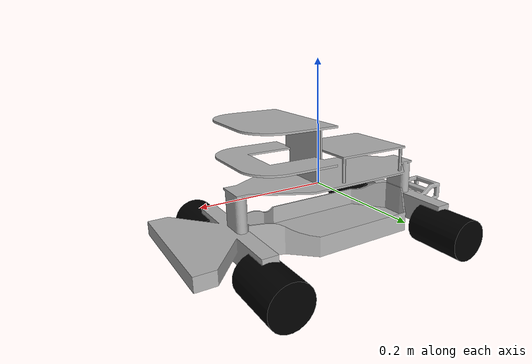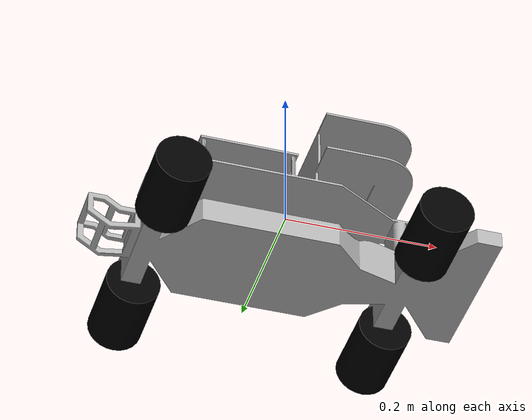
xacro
<?xml version="1.0"?>
<robot name="roscontrol"
  xmlns:xacro="http://ros.org/wiki/xacro">

  <xacro:property name="width" value="0.2" />
  <xacro:property name="leglen" value="0.6" />
  <xacro:property name="polelen" value="0.2" />
  <xacro:property name="bodylen" value="0.6" />
  <xacro:property name="baselen" value="0.4" />
  <xacro:property name="wheeldiam" value="0.07" />
  <xacro:property name="pi" value="3.1415" />
  <xacro:property name="chassisL" value="0.51" />
  <xacro:property name="chassisW" value="0.2" />
  <xacro:property name="chassisH" value="0.15" />
  <xacro:property name="seperationWheelDist" value=".1215" />
  <xacro:property name="frontWheelDist" value="0.1535" />
  <xacro:property name="backWheelDist" value="-0.1763" />

  <xacro:property name="chassisScale" value="0.001"/>

  <xacro:property name="chassisMeshXoffset" value="-0.125"/>
  <xacro:property name="chassisMeshYoffset" value="-0.070"/>
  <xacro:property name="chassisMeshZoffset" value="-0.085"/>

  <material name="blue">
    <color rgba="0 0 0.8 1"/>
  </material>

  <material name="black">
    <color rgba="0 0 0 1"/>
  </material>

  <material name="white">
    <color rgba="1 1 1 1"/>
  </material>

  <xacro:macro name="default_inertial" params="mass">
    <inertial>
      <mass value="${mass}" />
      <inertia ixx="1.0" ixy="0.0" ixz="0.0" iyy="1.0" iyz="0.0" izz="1.0" />
    </inertial>
  </xacro:macro>

  <link name="base_link">
    <visual>
      <geometry>
        <mesh filename="file:///$(find avc_urdf)/meshes/chassis2.DAE" scale="${chassisScale} ${chassisScale} ${chassisScale}"/>
      </geometry>
      <origin rpy="1.57 0 0" xyz="${chassisMeshXoffset} ${chassisMeshYoffset} ${chassisMeshZoffset}" />
    </visual>
    <collision>
      <geometry>
        <box size = "${chassisL} ${chassisW} ${chassisH} "/>
      </geometry>
    </collision>
    <xacro:default_inertial mass="10"/>
  </link>

  <xacro:macro name="wheel" params="prefix suffix fb lr">

    <link name="${prefix}_${suffix}_wheel">
      <visual>
        <origin xyz="0 0 0" rpy="${pi/2} 0 0" />
        <geometry>
          <cylinder radius="${wheeldiam/2}" length="0.1"/>
        </geometry>
        <material name="black"/>
      </visual>
      <collision>
        <origin xyz="0 0 0" rpy="${pi/2} 0 0" />
        <geometry>
          <cylinder radius="${wheeldiam/2}" length="0.1"/>
        </geometry>
      </collision>
      <xacro:default_inertial mass="1"/>
    </link>
    <joint name="${prefix}_${suffix}_wheel_joint" type="continuous">
      <axis xyz="0 1 0" rpy="0 0 0" />
      <parent link="base_link"/>
      <child link="${prefix}_${suffix}_wheel"/>
      <origin xyz="${fb} ${lr} -${wheeldiam/2+.05}" rpy="0 0 0"/>
    </joint>

    <!-- This block provides the simulator (Gazebo) with information on a few additional
    physical properties. See http://gazebosim.org/tutorials/?tut=ros_urdf for more-->
    <gazebo reference="${prefix}_${suffix}_wheel">
      <mu1 value="200.0"/>
      <mu2 value="100.0"/>
      <kp value="10000000.0" />
      <kd value="1.0" />
      <material>Gazebo/Grey</material>
    </gazebo>

    <!-- This block connects the wheel joint to an actuator (motor), which informs both
    simulation and visualization of the robot -->
    <transmission name="${prefix}_${suffix}_wheel_trans">
      <type>transmission_interface/SimpleTransmission</type>
      <actuator name="${prefix}_${suffix}_wheel_motor">
        <mechanicalReduction>1</mechanicalReduction>
      </actuator>
      <joint name="${prefix}_${suffix}_wheel_joint">
        <hardwareInterface>VelocityJointInterface</hardwareInterface>
      </joint>
    </transmission>

  </xacro:macro>

  <xacro:wheel prefix="right" suffix="front" fb="${frontWheelDist}" lr="${-seperationWheelDist}"/>
  <xacro:wheel prefix="left" suffix="front" fb="${frontWheelDist}" lr="${seperationWheelDist}"/>
  <xacro:wheel prefix="right" suffix="back" fb="${backWheelDist}" lr="${-seperationWheelDist}"/>
  <xacro:wheel prefix="left" suffix="back" fb="${backWheelDist}" lr="${seperationWheelDist}"/>

  <!-- Gazebo plugin for ROS Control -->
  <gazebo>
    <plugin name="gazebo_ros_control" filename="libgazebo_ros_control.so">
      <robotNamespace>/</robotNamespace>
    </plugin>
  </gazebo>

</robot>
